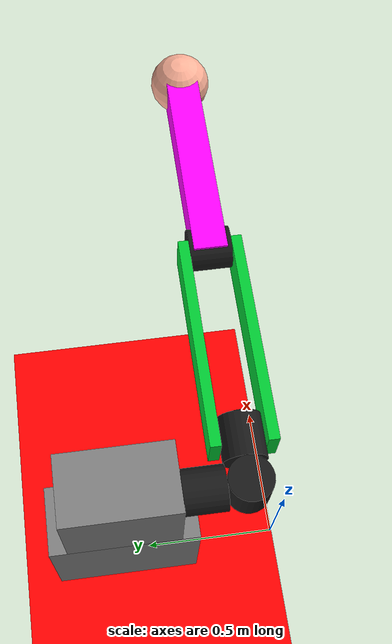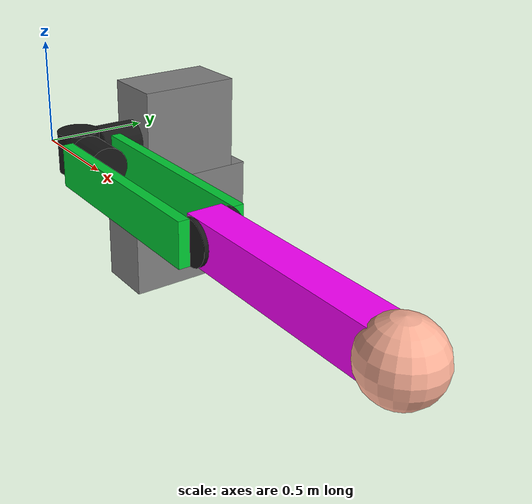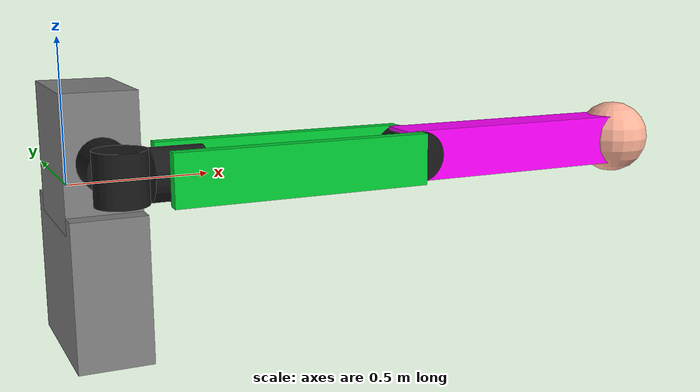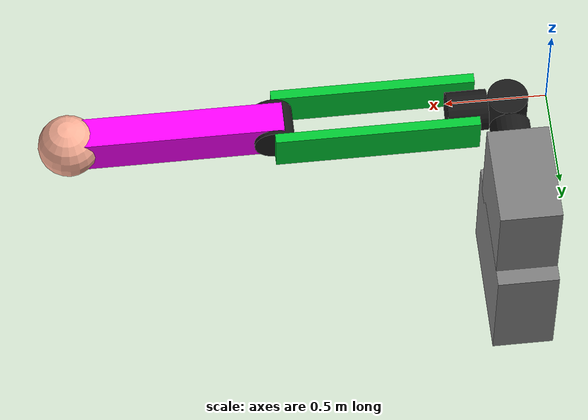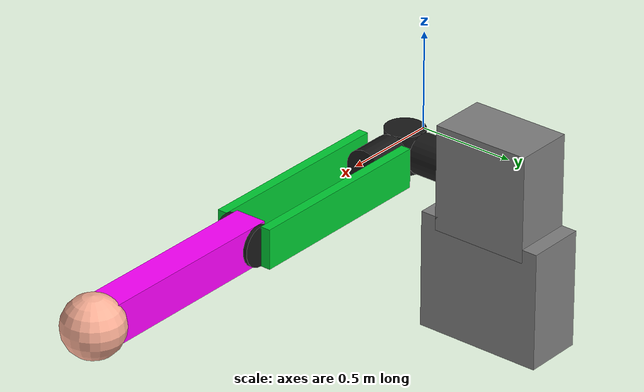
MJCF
<mujoco>
    <option timestep="0.0001"/>
    <option gravity="0 0 -9.81"/>
    <worldbody>
        <geom type="plane" size="10 10 0.1" pos="0 0 -5" rgba="1 0 0 1"/>
        <light diffuse="0.7 0.7 0.7" pos="0 0 3"/>
        <body name="torso" pos="0.2 0.25 0">
            <geom type="box" pos="0 0.35 0" size="0.15 0.25 0.27" rgba="0.5 0.5 0.5 1"/>
            <geom type="box" pos="0 0.35 -0.5" size="0.15 0.33 0.3" rgba="0.5 0.5 0.5 1"/>
            <body name="arm" pos="0 0 0">
                <joint name="shoulder1" pos="0 0 0" axis="0 1 0" range="0 180"/>
                <geom type="cylinder" size="0.1 0.1" pos="0 0 0" rgba="0.1 0.1 0.1 1" euler="90 0 0" mass="0.06"/>
                <body name="torse_part2" pos="0 -0.2 0">
                    <joint name="shoulder2" pos="0 0 0" axis="0 0 1" range="-2 2"/>
                    <geom type="cylinder" size="0.1 0.1" pos="0 0 0" rgba="0.1 0.1 0.1 1" mass="0.06"/>
                    <body name="body3" pos="0.2 0 0">
                        <geom type="cylinder" size="0.1 0.1" pos="0 0 0" rgba="0.1 0.1 0.1 1" euler="0 90 0" mass="0.06"/>
                        <body name="elbow" pos="0.45 0 0">
                            <geom type="box" size="0.5 0.025 0.1" pos="0 -0.125 0" rgba="0 0.8 0.2 1" mass="0.02"/>
                            <geom type="box" size="0.5 0.025 0.1" pos="0 0.125 0" rgba="0 0.8 0.2 1" mass="0.02"/>
                            <body pos="0 0 0">
                                <joint pos="0.5 0 0" axis="0 1 0" range="-90 0"/>
                                <geom type="cylinder" size="0.1 0.1" pos="0.5 0 0" euler="90 0 0" rgba="0.1 0.1 0.1 1" mass="0.06"/>
                                <body>
                                    <geom type="box" size="0.5 0.08 0.1" pos="0.95 0 0" rgba="1 0 1 1" mass="0.02"/>
                                    <body name="wrist" pos="1.5 0 0">
                                        <geom type="sphere" size="0.15" pos="0 0 0" rgba="1 0.7 0.6 1"/>
                                    </body>
                                </body>
                            </body>
                        </body>
                    </body>
                </body>
            </body>
        </body>
    </worldbody>
</mujoco>
